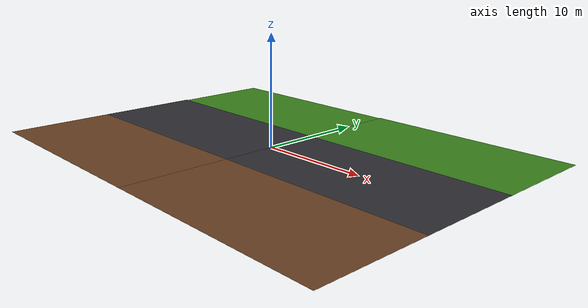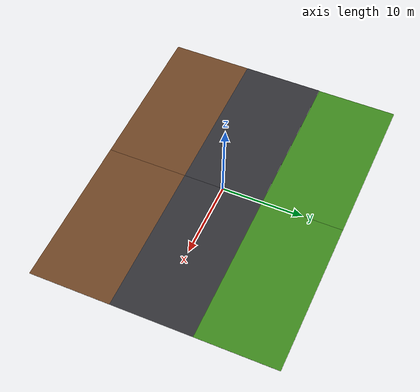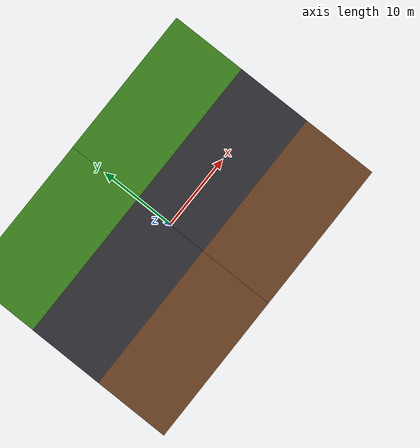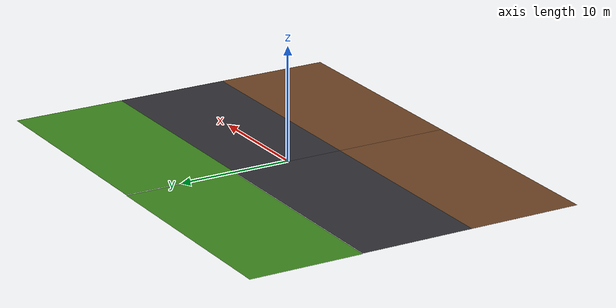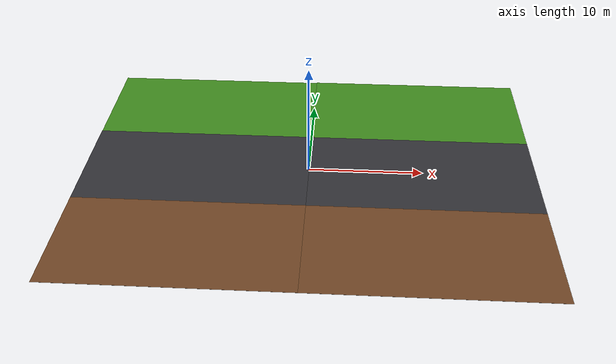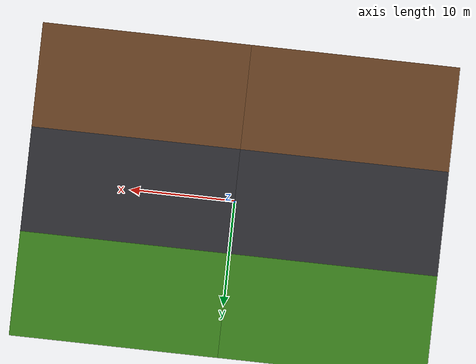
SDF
<sdf version="1.10">
 <world name="data_collection">
  <physics name="1ms" type="ignored">
   <max_step_size>0.001</max_step_size>
   <real_time_factor>1.0</real_time_factor>
  </physics>
  <plugin filename="gz-sim-physics-system" name="gz::sim::systems::Physics"/>
  <plugin filename="gz-sim-user-commands-system" name="gz::sim::systems::UserCommands"/>
  <plugin filename="gz-sim-scene-broadcaster-system" name="gz::sim::systems::SceneBroadcaster"/>
  <plugin filename="gz-sim-sensors-system" name="gz::sim::systems::Sensors">
   <render_engine>ogre2</render_engine>
   <background_color>0.6 0.7 0.85 1.0</background_color>
  </plugin>
  <scene><ambient>0.5 0.5 0.5 1</ambient><background>0.6 0.7 0.85 1</background></scene>
  <light type="directional" name="sun">
   <pose>0 0 10 0 0 0</pose>
   <diffuse>0.95 0.95 0.9 1</diffuse>
   <specular>0.3 0.3 0.3 1</specular>
   <direction>-0.5 0.3 -1</direction>
   <attenuation>
    <range>1000</range>
    <constant>0.9</constant>
    <linear>0.01</linear>
    <quadratic>0.001</quadratic>
   </attenuation>
  </light>
  <model name="grass_w">
   <static>true</static>
   <pose>-10 10 0 0 0 0</pose>
   <link name="link">
    <visual name="visual">
     <geometry><plane><normal>0 0 1</normal><size>20 10</size></plane></geometry>
     <material>
      <ambient>0.15 0.35 0.08 1</ambient>
      <diffuse>0.25 0.55 0.12 1</diffuse>
      <specular>0.05 0.05 0.05 1</specular>
     </material>
     <plugin filename="gz-sim-label-system" name="gz::sim::systems::Label"><label>32</label></plugin>
    </visual>
    <collision name="collision">
     <geometry><plane><normal>0 0 1</normal><size>20 10</size></plane></geometry>
    </collision>
   </link>
  </model>
  <model name="grass_e">
   <static>true</static>
   <pose>10 10 0 0 0 0</pose>
   <link name="link">
    <visual name="visual">
     <geometry><plane><normal>0 0 1</normal><size>20 10</size></plane></geometry>
     <material>
      <ambient>0.15 0.35 0.08 1</ambient>
      <diffuse>0.25 0.55 0.12 1</diffuse>
      <specular>0.05 0.05 0.05 1</specular>
     </material>
     <plugin filename="gz-sim-label-system" name="gz::sim::systems::Label"><label>32</label></plugin>
    </visual>
    <collision name="collision">
     <geometry><plane><normal>0 0 1</normal><size>20 10</size></plane></geometry>
    </collision>
   </link>
  </model>
  <model name="road_w">
   <static>true</static>
   <pose>-10 0 0 0 0 0</pose>
   <link name="link">
    <visual name="visual">
     <geometry><plane><normal>0 0 1</normal><size>20 10</size></plane></geometry>
     <material>
      <ambient>0.1 0.1 0.11 1</ambient>
      <diffuse>0.2 0.2 0.22 1</diffuse>
      <specular>0.1 0.1 0.1 1</specular>
     </material>
     <plugin filename="gz-sim-label-system" name="gz::sim::systems::Label"><label>10</label></plugin>
    </visual>
    <collision name="collision">
     <geometry><plane><normal>0 0 1</normal><size>20 10</size></plane></geometry>
    </collision>
   </link>
  </model>
  <model name="road_e">
   <static>true</static>
   <pose>10 0 0 0 0 0</pose>
   <link name="link">
    <visual name="visual">
     <geometry><plane><normal>0 0 1</normal><size>20 10</size></plane></geometry>
     <material>
      <ambient>0.1 0.1 0.11 1</ambient>
      <diffuse>0.2 0.2 0.22 1</diffuse>
      <specular>0.1 0.1 0.1 1</specular>
     </material>
     <plugin filename="gz-sim-label-system" name="gz::sim::systems::Label"><label>10</label></plugin>
    </visual>
    <collision name="collision">
     <geometry><plane><normal>0 0 1</normal><size>20 10</size></plane></geometry>
    </collision>
   </link>
  </model>
  <model name="soil_w">
   <static>true</static>
   <pose>-10 -10 0 0 0 0</pose>
   <link name="link">
    <visual name="visual">
     <geometry><plane><normal>0 0 1</normal><size>20 10</size></plane></geometry>
     <material>
      <ambient>0.25 0.15 0.08 1</ambient>
      <diffuse>0.45 0.28 0.15 1</diffuse>
      <specular>0.05 0.05 0.05 1</specular>
     </material>
     <plugin filename="gz-sim-label-system" name="gz::sim::systems::Label"><label>80</label></plugin>
    </visual>
    <collision name="collision">
     <geometry><plane><normal>0 0 1</normal><size>20 10</size></plane></geometry>
    </collision>
   </link>
  </model>
  <model name="soil_e">
   <static>true</static>
   <pose>10 -10 0 0 0 0</pose>
   <link name="link">
    <visual name="visual">
     <geometry><plane><normal>0 0 1</normal><size>20 10</size></plane></geometry>
     <material>
      <ambient>0.25 0.15 0.08 1</ambient>
      <diffuse>0.45 0.28 0.15 1</diffuse>
      <specular>0.05 0.05 0.05 1</specular>
     </material>
     <plugin filename="gz-sim-label-system" name="gz::sim::systems::Label"><label>80</label></plugin>
    </visual>
    <collision name="collision">
     <geometry><plane><normal>0 0 1</normal><size>20 10</size></plane></geometry>
    </collision>
   </link>
  </model>
 </world>
</sdf>
